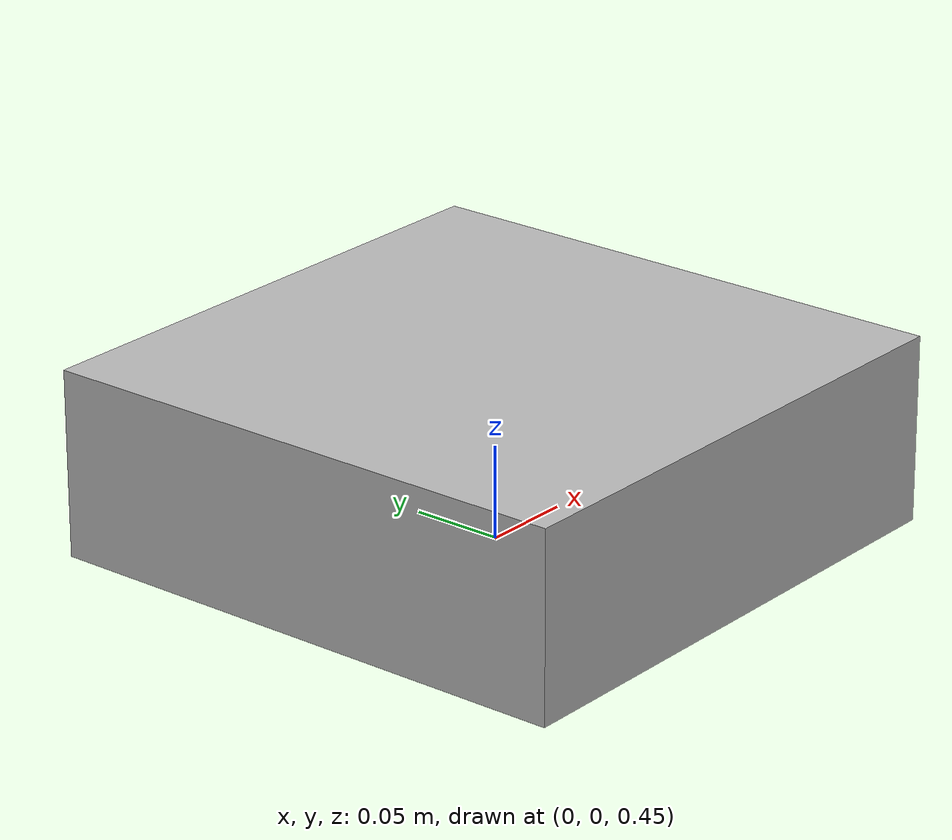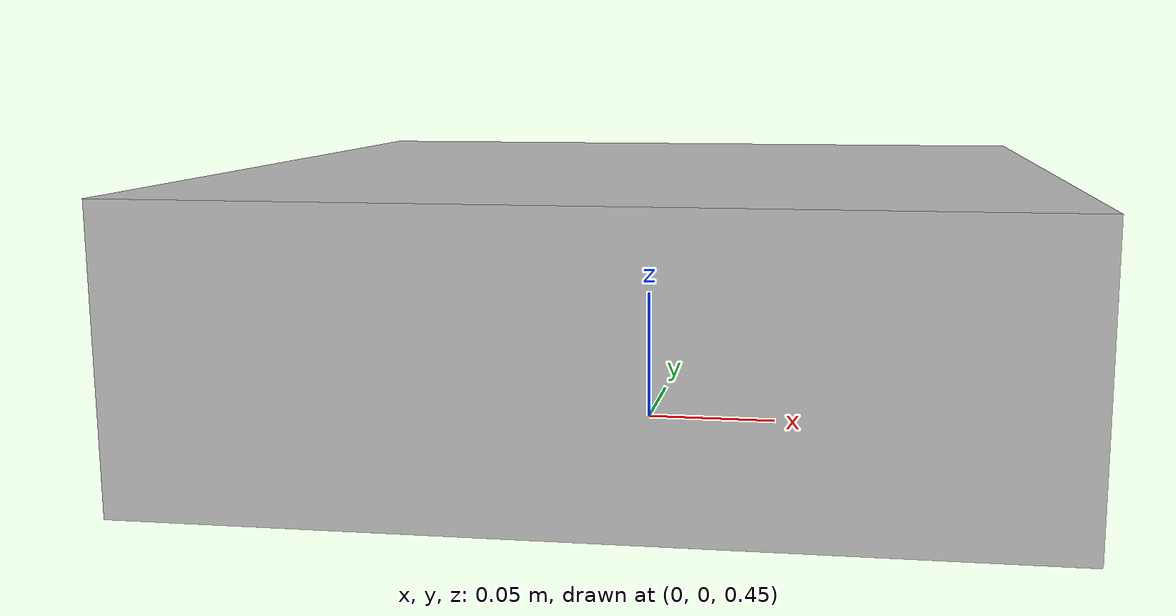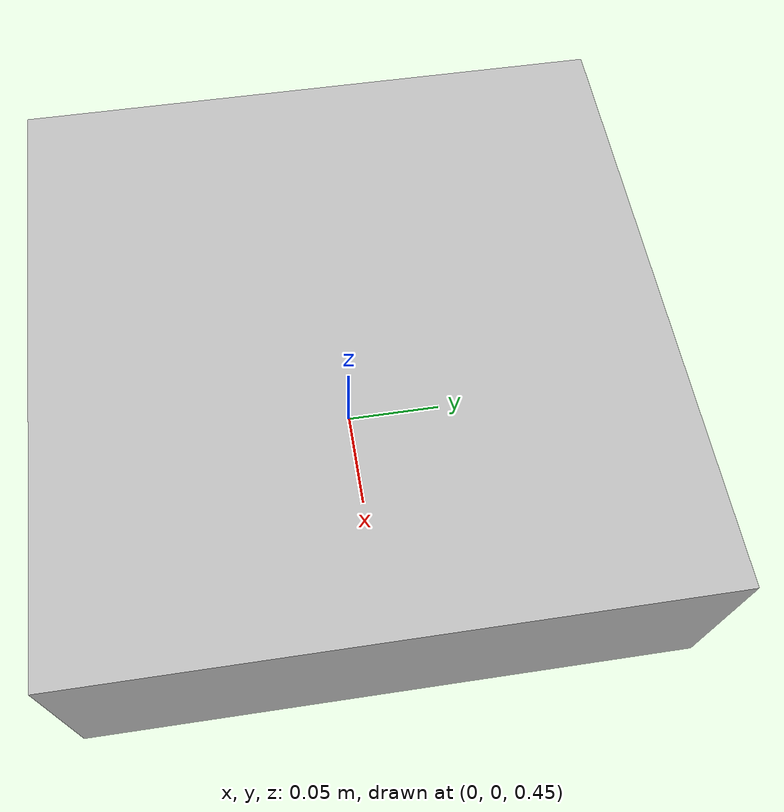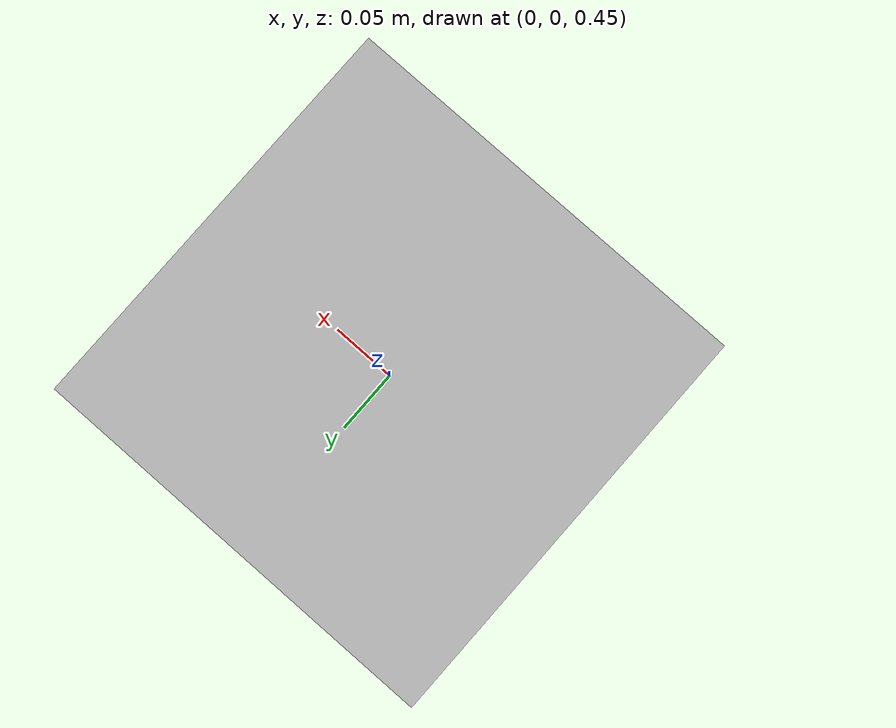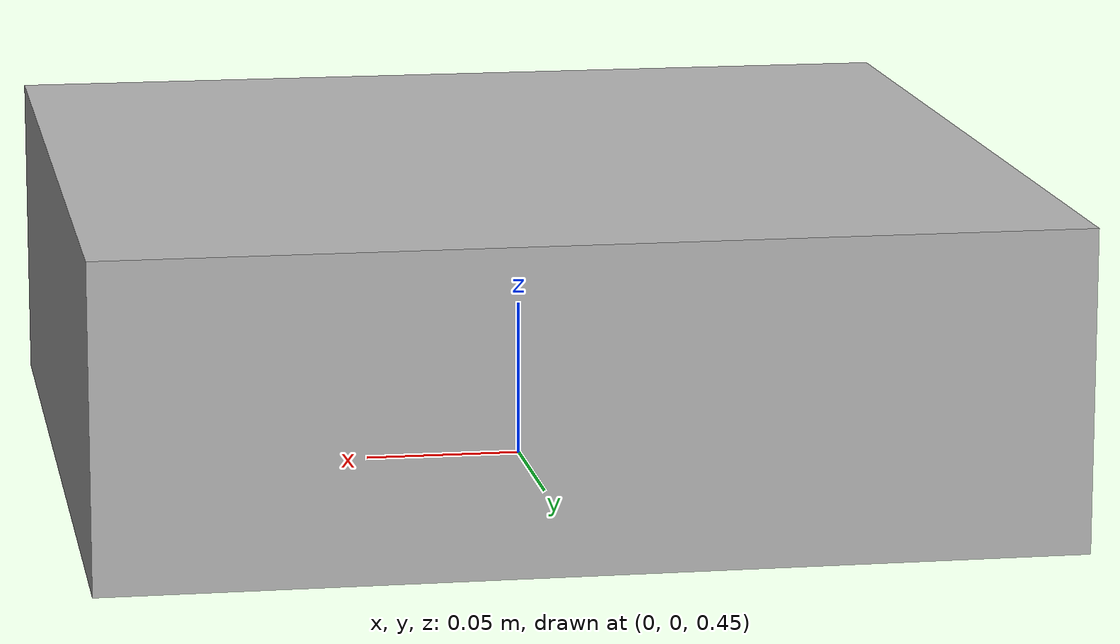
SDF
<?xml version="1.0" ?>
<sdf version="1.9">
  <model name="drone">
    <pose>0 0 0.5 0 0 0</pose>
    <link name="base_link">
      <inertial>
        <mass>1.0</mass>
        <inertia>
          <ixx>0.002</ixx><iyy>0.002</iyy><izz>0.003</izz>
          <ixy>0</ixy><ixz>0</ixz><iyz>0</iyz>
        </inertia>
      </inertial>
      <collision name="col">
        <geometry><box><size>0.3 0.3 0.1</size></box></geometry>
      </collision>
      <visual name="vis">
        <geometry><box><size>0.3 0.3 0.1</size></box></geometry>
      </visual>
    </link>

    <plugin name="lin_vel" filename="gz-sim-linear-velocity-control-system">
      <topic>/model/drone/cmd_vel</topic>
      <use_world_frame>false</use_world_frame>
      <limit>3.0</limit>
    </plugin>
    <plugin name="ang_vel" filename="gz-sim-angular-velocity-control-system">
      <topic>/model/drone/cmd_vel</topic>
      <use_world_frame>false</use_world_frame>
      <limit>2.0</limit>
    </plugin>
    <plugin name="odom_pub" filename="gz-sim-odometry-publisher-system">
      <frame_id>world</frame_id>
      <child_frame_id>drone/base_link</child_frame_id>
      <topic>/model/drone/odometry</topic>
      <publish_velocity>true</publish_velocity>
    </plugin>
  </model>
</sdf>
